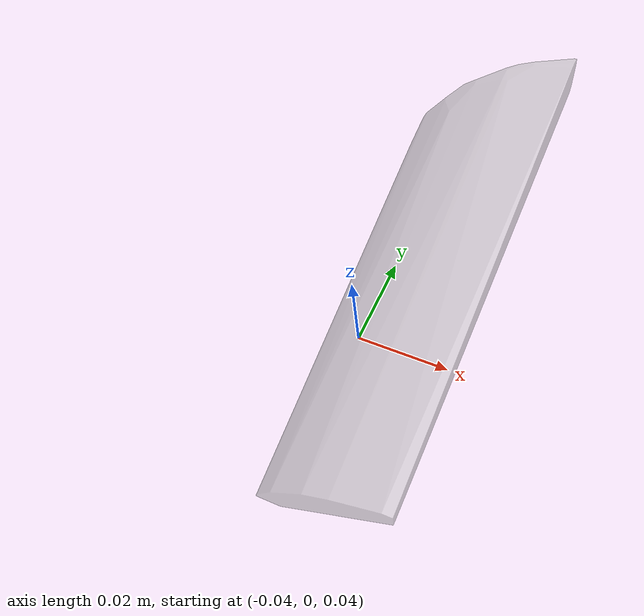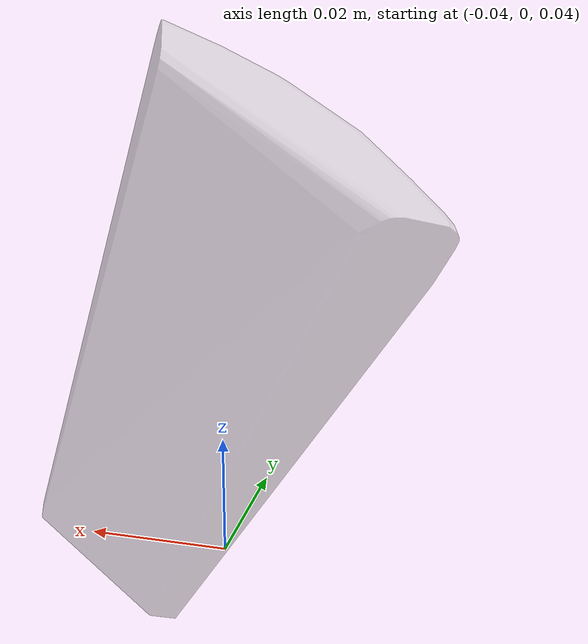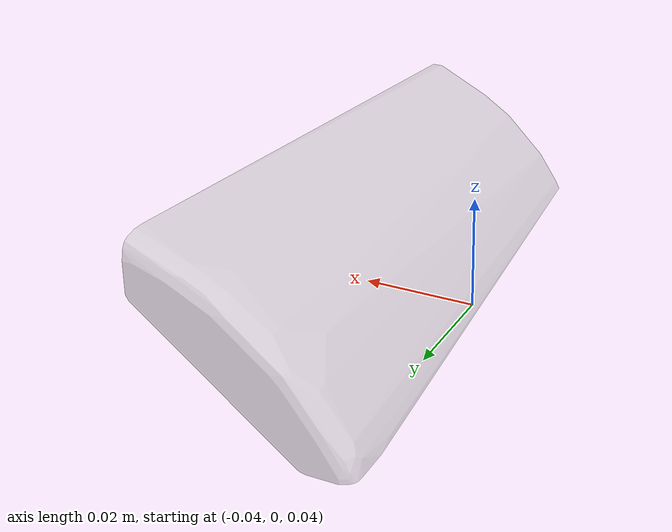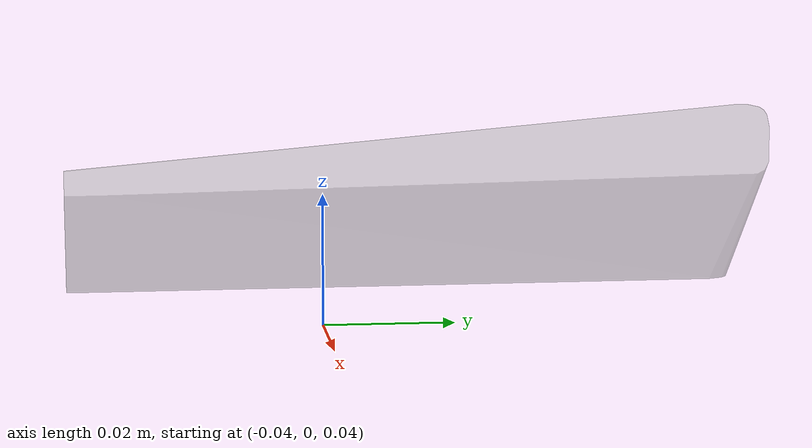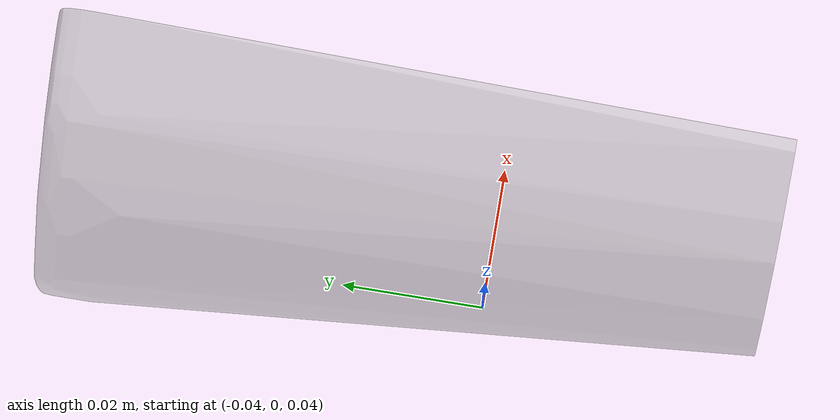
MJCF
<mujoco model="root">
  <compiler angle="radian" meshdir="."/>

  <asset>
    <mesh name="dec" file="coacd_convex_piece_0.obj" scale="0.1 0.1 0.1"/>
  </asset>

  <worldbody>
  <body name="object_grap" gravcomp="1">
    <inertial pos="0 0 0"  mass="0.3" />
    <geom type="mesh" contype="0" conaffinity="0" group="1" density="0" rgba="0.75 0.75 0.75 0.5" mesh="dec"/>
  </body>
  </worldbody>
</mujoco>
